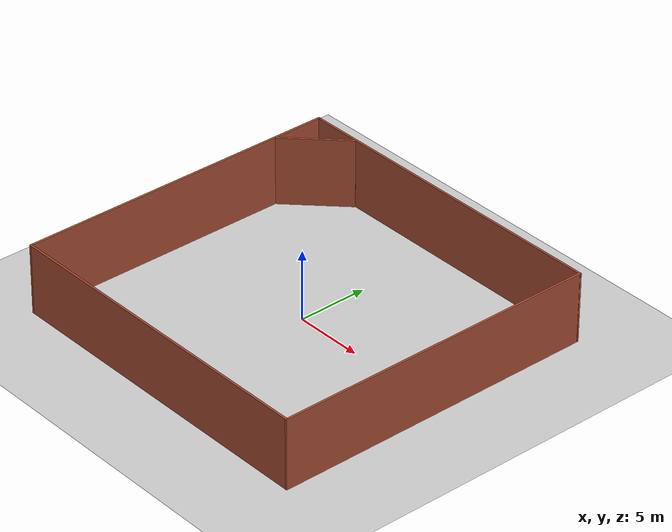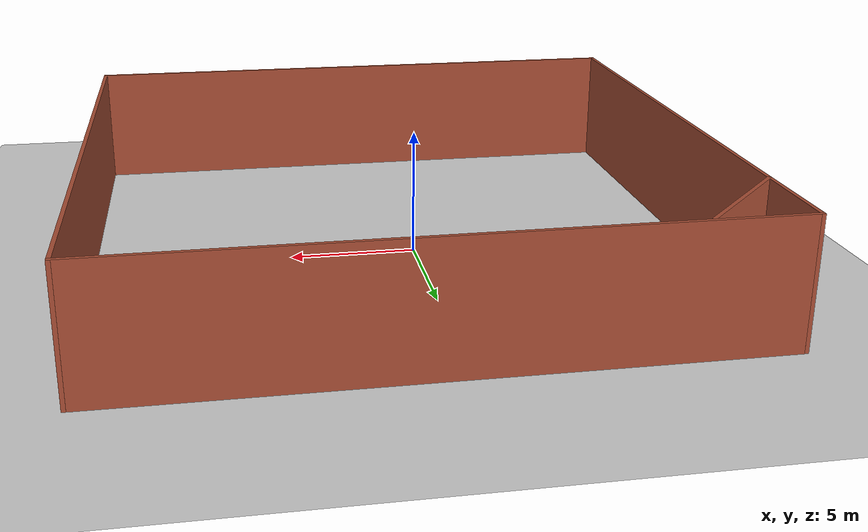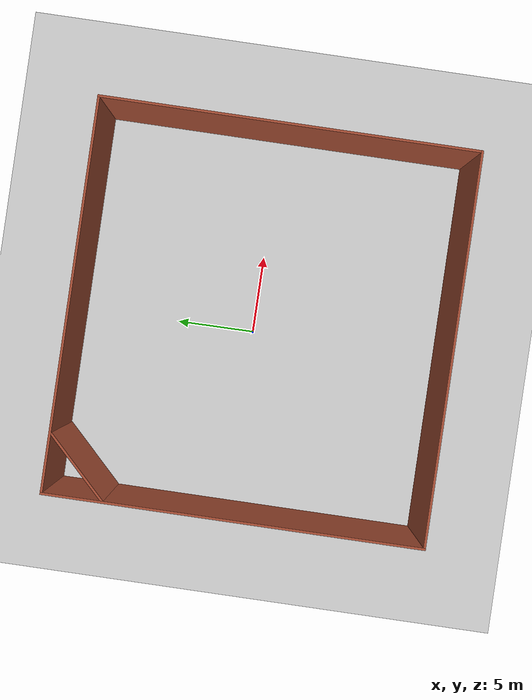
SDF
<sdf version="1.7">
 <world name="default">
  <light name="sun" type="directional">
   <pose>0 0 10 0 -0 0</pose>
   <diffuse>0.8 0.8 0.8 1</diffuse>
   <specular>0.2 0.2 0.2 1</specular>
   <attenuation>
    <range>1000</range>
    <constant>0.9</constant>
    <linear>0.01</linear>
    <quadratic>0.001</quadratic>
   </attenuation>
   <direction>-0.5 0.1 -0.9</direction>
   <spot><inner_angle>0</inner_angle><outer_angle>0</outer_angle><falloff>0</falloff></spot>
  </light>
  <model name="ground_plane">
   <static>1</static>
   <link name="link">
    <collision name="collision">
     <geometry><plane><normal>0 0 1</normal><size>100 100</size></plane></geometry>
     <surface><friction><ode><mu>100</mu><mu2>50</mu2></ode></friction></surface>
    </collision>
    <visual name="visual">
     <cast_shadows>0</cast_shadows>
     <geometry><plane><normal>0 0 1</normal><size>100 100</size></plane></geometry>
     <material>
      <script><uri>file://media/materials/scripts/gazebo.material</uri><name>Gazebo/Grey</name></script>
     </material>
    </visual>
   </link>
  </model>
  <gravity>0 0 -9.8</gravity>
  <magnetic_field>6e-06 2.3e-05 -4.2e-05</magnetic_field>
  <atmosphere type="adiabatic"/>
  <physics type="ode">
   <max_step_size>0.001</max_step_size>
   <real_time_factor>1</real_time_factor>
   <real_time_update_rate>1000</real_time_update_rate>
  </physics>
  <scene><ambient>0.4 0.4 0.4 1</ambient><background>0.7 0.7 0.7 1</background><shadows>1</shadows></scene>
  <audio><device>default</device></audio>
  <spherical_coordinates>
   <surface_model>EARTH_WGS84</surface_model>
   <latitude_deg>0</latitude_deg>
   <longitude_deg>0</longitude_deg>
   <elevation>0</elevation>
   <heading_deg>0</heading_deg>
  </spherical_coordinates>
  <model name="test-room">
   <pose>0.7135 -0.479888 0 0 -0 0</pose>
   <link name="Wall_2">
    <collision name="Wall_2_Collision">
     <geometry><box><size>23.4868 0.15 5</size></box></geometry>
     <pose>0 0 2.5 0 -0 0</pose>
    </collision>
    <visual name="Wall_2_Visual">
     <pose>0 0 2.5 0 -0 0</pose>
     <geometry><box><size>23.4868 0.15 5</size></box></geometry>
     <material>
      <script><uri>file://media/materials/scripts/gazebo.material</uri><name>Gazebo/Bricks</name></script>
      <ambient>1 1 1 1</ambient>
     </material>
     <meta><layer>0</layer></meta>
    </visual>
    <pose>-12.099 0.008888 0 0 -0 -1.5711</pose>
   </link>
   <link name="Wall_3">
    <collision name="Wall_3_Collision">
     <geometry><box><size>24.3479 0.15 5</size></box></geometry>
     <pose>0 0 2.5 0 -0 0</pose>
    </collision>
    <visual name="Wall_3_Visual">
     <pose>0 0 2.5 0 -0 0</pose>
     <geometry><box><size>24.3479 0.15 5</size></box></geometry>
     <material>
      <script><uri>file://media/materials/scripts/gazebo.material</uri><name>Gazebo/Bricks</name></script>
      <ambient>1 1 1 1</ambient>
     </material>
     <meta><layer>0</layer></meta>
    </visual>
    <pose>-0.003501 -11.6681 0 0 -0 -0.000744</pose>
   </link>
   <link name="Wall_4">
    <collision name="Wall_4_Collision">
     <geometry><box><size>23.5044 0.15 5</size></box></geometry>
     <pose>0 0 2.5 0 -0 0</pose>
    </collision>
    <visual name="Wall_4_Visual">
     <pose>0 0 2.5 0 -0 0</pose>
     <geometry><box><size>23.5044 0.15 5</size></box></geometry>
     <material>
      <script><uri>file://media/materials/scripts/gazebo.material</uri><name>Gazebo/Bricks</name></script>
      <ambient>1 1 1 1</ambient>
     </material>
     <meta><layer>0</layer></meta>
    </visual>
    <pose>12.099 -0.000112 0 0 -0 1.5705</pose>
   </link>
   <link name="Wall_5">
    <collision name="Wall_5_Collision">
     <geometry><box><size>24.3479 0.15 5</size></box></geometry>
     <pose>0 0 2.5 0 -0 0</pose>
    </collision>
    <visual name="Wall_5_Visual">
     <pose>0 0 2.5 0 -0 0</pose>
     <geometry><box><size>24.3479 0.15 5</size></box></geometry>
     <material>
      <script><uri>file://media/materials/scripts/gazebo.material</uri><name>Gazebo/Bricks</name></script>
      <ambient>1 1 1 1</ambient>
     </material>
     <meta><layer>0</layer></meta>
    </visual>
    <pose>0.0035 11.6769 0 0 -0 3.14159</pose>
   </link>
   <link name="Wall_6">
    <collision name="Wall_6_Collision">
     <geometry><box><size>0.15 0.15 2.5</size></box></geometry>
     <pose>0 0 1.25 0 -0 0</pose>
    </collision>
    <visual name="Wall_6_Visual">
     <pose>0 0 1.25 0 -0 0</pose>
     <geometry><box><size>0.15 0.15 2.5</size></box></geometry>
     <material>
      <script><uri>file://media/materials/scripts/gazebo.material</uri><name>Gazebo/Grey</name></script>
      <ambient>1 1 1 1</ambient>
     </material>
     <meta><layer>0</layer></meta>
    </visual>
    <pose>-12.0955 11.6769 0 0 -0 0</pose>
   </link>
   <link name="Wall_8">
    <collision name="Wall_8_Collision">
     <geometry><box><size>5.25 0.15 5</size></box></geometry>
     <pose>0 0 2.5 0 -0 0</pose>
    </collision>
    <visual name="Wall_8_Visual">
     <pose>0 0 2.5 0 -0 0</pose>
     <geometry><box><size>5.25 0.15 5</size></box></geometry>
     <material>
      <script><uri>file://media/materials/scripts/gazebo.material</uri><name>Gazebo/Bricks</name></script>
      <ambient>1 1 1 1</ambient>
     </material>
     <meta><layer>0</layer></meta>
    </visual>
    <pose>-10.2625 9.76589 0 0 -0 -2.35619</pose>
   </link>
   <static>1</static>
  </model>
 </world>
</sdf>
